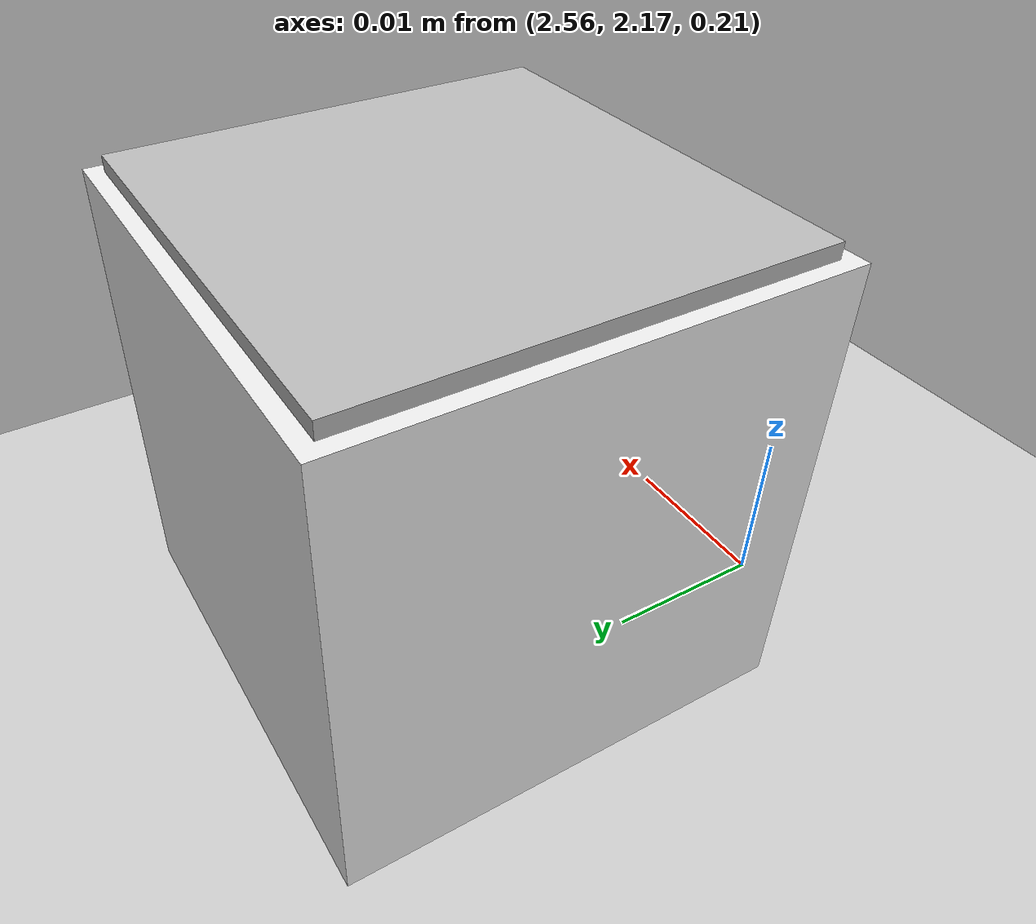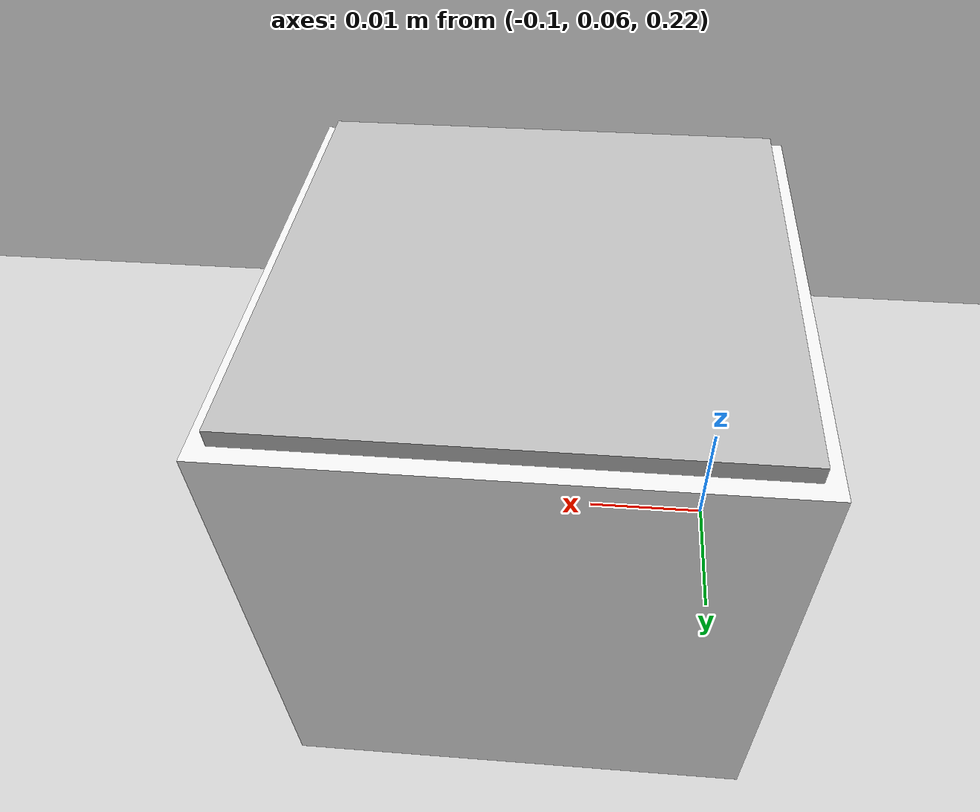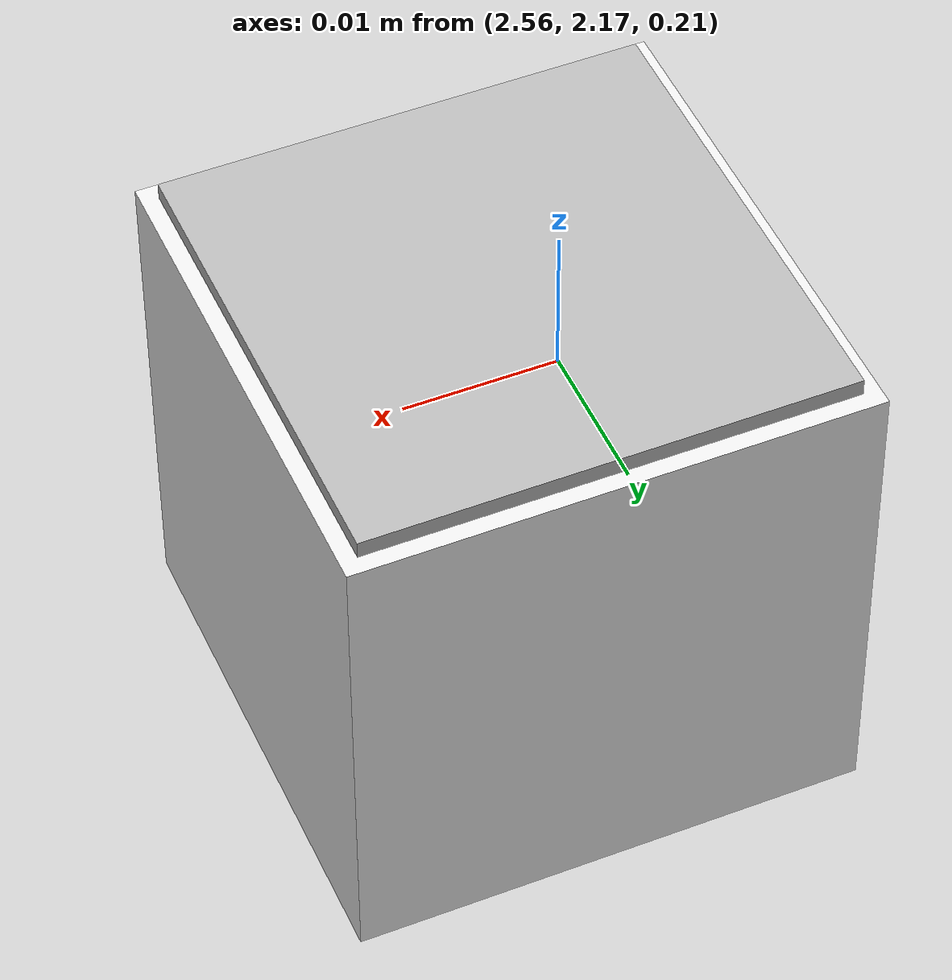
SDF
<sdf version="1.7">
 <world name="default">
  <light name="sun" type="directional">
   <pose>0 0 10 0 -0 0</pose>
   <diffuse>0.8 0.8 0.8 1</diffuse>
   <specular>0.2 0.2 0.2 1</specular>
   <attenuation>
    <range>1000</range>
    <constant>0.9</constant>
    <linear>0.01</linear>
    <quadratic>0.001</quadratic>
   </attenuation>
   <direction>-0.5 0.1 -0.9</direction>
   <spot><inner_angle>0</inner_angle><outer_angle>0</outer_angle><falloff>0</falloff></spot>
  </light>
  <model name="ground_plane">
   <static>1</static>
   <link name="link">
    <collision name="collision">
     <geometry><plane><normal>0 0 1</normal><size>100 100</size></plane></geometry>
     <surface>
      <contact><collide_bitmask>65535</collide_bitmask></contact>
      <friction><ode><mu>100</mu><mu2>50</mu2></ode></friction>
     </surface>
    </collision>
    <visual name="visual">
     <cast_shadows>0</cast_shadows>
     <geometry><plane><normal>0 0 1</normal><size>100 100</size></plane></geometry>
     <material>
      <script><uri>file://media/materials/scripts/gazebo.material</uri><name>Gazebo/Grey</name></script>
     </material>
    </visual>
   </link>
  </model>
  <gravity>0 0 -9.8</gravity>
  <magnetic_field>6e-06 2.3e-05 -4.2e-05</magnetic_field>
  <atmosphere type="adiabatic"/>
  <physics type="ode">
   <max_step_size>0.001</max_step_size>
   <real_time_factor>1</real_time_factor>
   <real_time_update_rate>1000</real_time_update_rate>
  </physics>
  <scene><ambient>0.4 0.4 0.4 1</ambient><background>0.7 0.7 0.7 1</background><shadows>1</shadows></scene>
  <spherical_coordinates>
   <surface_model>EARTH_WGS84</surface_model>
   <latitude_deg>0</latitude_deg>
   <longitude_deg>0</longitude_deg>
   <elevation>0</elevation>
   <heading_deg>0</heading_deg>
  </spherical_coordinates>
  <light name="charge_light" type="spot">
   <pose>1.27013 2.10957 1 0 -0 0</pose>
   <diffuse>1 0 0 1</diffuse>
   <specular>1 0 0 1</specular>
   <direction>0 0 -1</direction>
   <attenuation><range>0</range><constant>0</constant><linear>0</linear><quadratic>0</quadratic></attenuation>
   <cast_shadows>0</cast_shadows>
   <spot><inner_angle>0.6</inner_angle><outer_angle>2</outer_angle><falloff>1</falloff></spot>
  </light>
  <model name="marker_id9">
   <link name="link_0">
    <inertial>
     <mass>0.1</mass>
     <inertia><ixx>0.0001</ixx><ixy>0</ixy><ixz>0</ixz><iyy>0.0001</iyy><iyz>0</iyz><izz>0.0001</izz></inertia>
    </inertial>
    <pose>0 0 0.015 0 -0 0</pose>
    <visual name="visual">
     <geometry><box><size>0.03 0.03 0.03</size></box></geometry>
     <material>
      <script><uri>file://media/materials/scripts/gazebo.material</uri><name>Gazebo/White</name></script>
     </material>
    </visual>
    <collision name="collision">
     <geometry><box><size>0.03 0.03 0.03</size></box></geometry>
     <surface>
      <friction><ode><mu>100</mu><mu2>100</mu2></ode></friction>
      <contact><ode><kp>1e+07</kp><kd>1</kd><min_depth>0.001</min_depth><max_vel>0.1</max_vel></ode></contact>
     </surface>
    </collision>
   </link>
   <link name="link_1">
    <inertial>
     <mass>0.001</mass>
     <inertia><ixx>1e-05</ixx><ixy>0</ixy><ixz>0</ixz><iyy>1e-05</iyy><iyz>0</iyz><izz>1e-05</izz></inertia>
    </inertial>
    <pose>0 0 0.0305 0 -0 0</pose>
    <visual name="visual">
     <geometry><box><size>0.028 0.028 0.001</size></box></geometry>
     <material>
      <script>
       <uri>model://small_marker_charge_pile/materials/scripts</uri>
       <uri>model://small_marker_charge_pile/materials/textures</uri>
       <name>reinovo/id9_marker</name>
      </script>
     </material>
    </visual>
   </link>
   <joint name="link_0_JOINT_0" type="fixed"><parent>link_0</parent><child>link_1</child></joint>
   <pose>2.5707 2.18646 0.20504 0 -0 0</pose>
  </model>
  <model name="marker_id3">
   <link name="link_0">
    <inertial>
     <mass>0.1</mass>
     <inertia><ixx>0.0001</ixx><ixy>0</ixy><ixz>0</ixz><iyy>0.0001</iyy><iyz>0</iyz><izz>0.0001</izz></inertia>
    </inertial>
    <pose>0 0 0.015 0 -0 0</pose>
    <visual name="visual">
     <geometry><box><size>0.03 0.03 0.03</size></box></geometry>
     <material>
      <script><uri>file://media/materials/scripts/gazebo.material</uri><name>Gazebo/White</name></script>
     </material>
    </visual>
    <collision name="collision">
     <geometry><box><size>0.03 0.03 0.03</size></box></geometry>
     <surface>
      <friction><ode><mu>100</mu><mu2>100</mu2></ode></friction>
      <contact><ode><kp>1e+07</kp><kd>1</kd><min_depth>0.001</min_depth><max_vel>0.1</max_vel></ode></contact>
     </surface>
    </collision>
   </link>
   <link name="link_1">
    <inertial>
     <mass>0.001</mass>
     <inertia><ixx>1e-05</ixx><ixy>0</ixy><ixz>0</ixz><iyy>1e-05</iyy><iyz>0</iyz><izz>1e-05</izz></inertia>
    </inertial>
    <pose>0 0 0.0305 0 -0 0</pose>
    <visual name="visual">
     <geometry><box><size>0.028 0.028 0.001</size></box></geometry>
     <material>
      <script>
       <uri>model://small_marker_charge_pile/materials/scripts</uri>
       <uri>model://small_marker_charge_pile/materials/textures</uri>
       <name>reinovo/id3_marker</name>
      </script>
     </material>
    </visual>
   </link>
   <joint name="link_0_JOINT_0" type="fixed"><parent>link_0</parent><child>link_1</child></joint>
   <pose>-0.085703 0.071689 0.224572 0 -0 0</pose>
  </model>
 </world>
</sdf>
